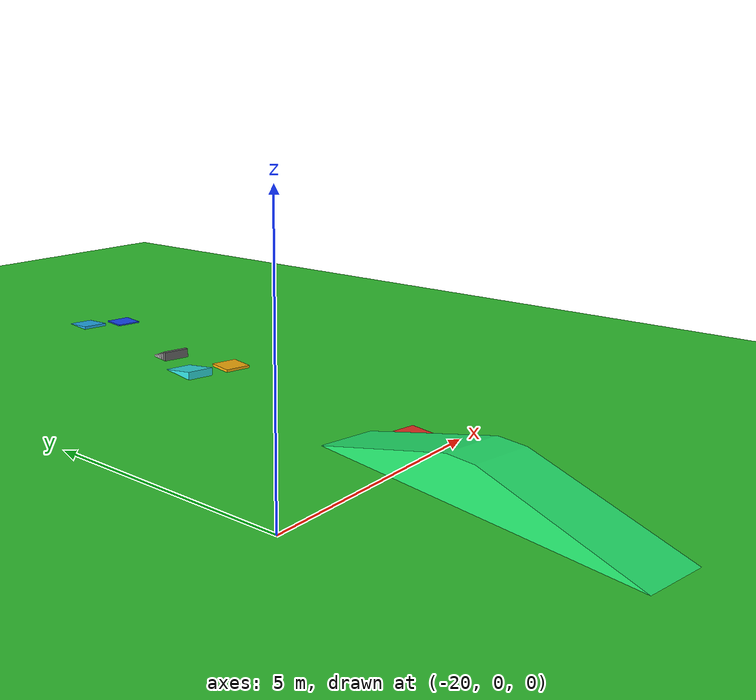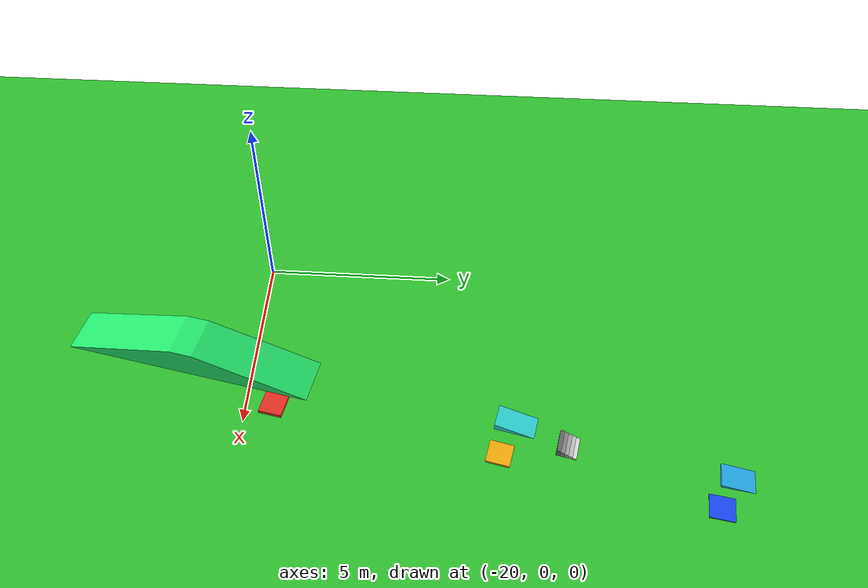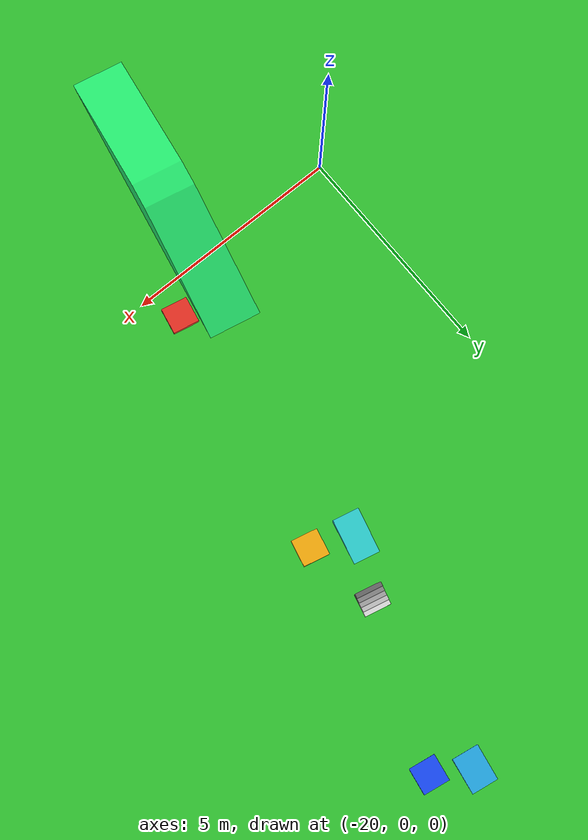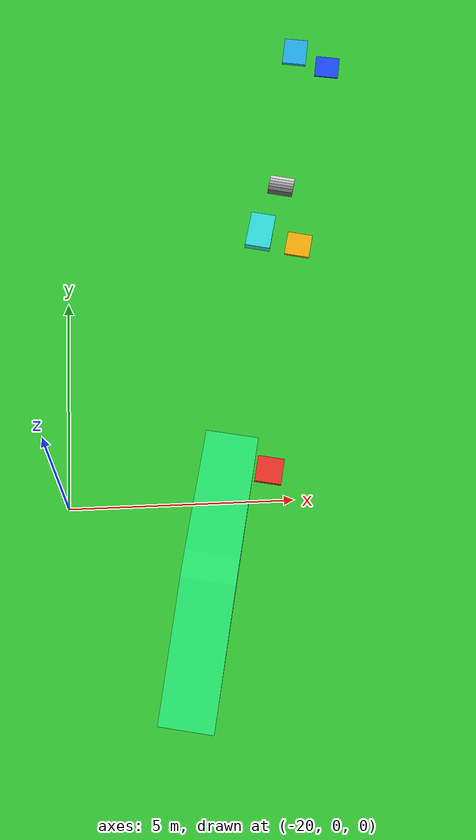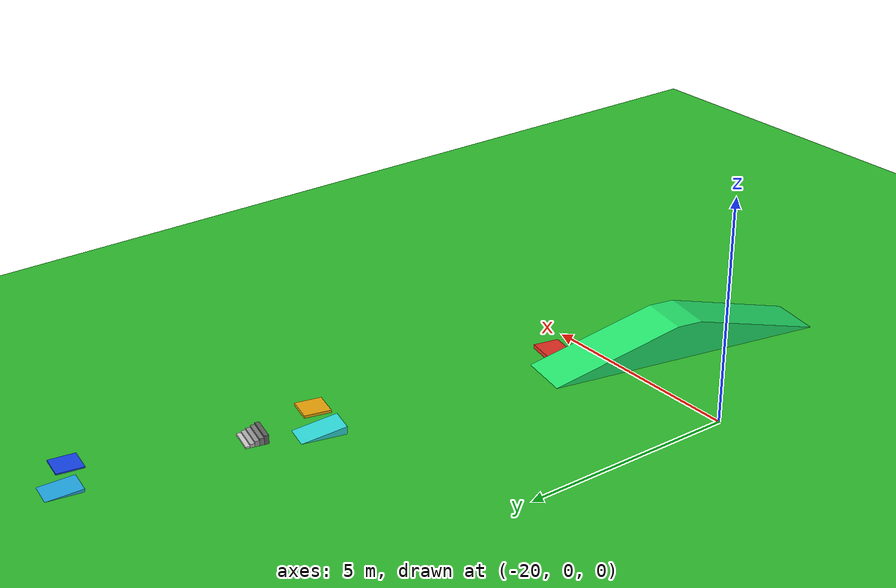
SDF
<sdf version="1.8">
 <world name="aceleradora">
  <physics name="1ms" type="ignored">
   <max_step_size>0.001</max_step_size>
   <real_time_factor>1.0</real_time_factor>
  </physics>
  <plugin filename="libgz-sim-physics-system.so" name="gz::sim::systems::Physics"/>
  <plugin filename="libgz-sim-user-commands-system.so" name="gz::sim::systems::UserCommands"/>
  <plugin filename="libgz-sim-scene-broadcaster-system.so" name="gz::sim::systems::SceneBroadcaster"/>
  <plugin filename="libgz-sim-sensors-system.so" name="gz::sim::systems::Sensors">
   <render_engine>ogre2</render_engine>
  </plugin>
  <light type="directional" name="sun">
   <pose>0 0 10 0 0 0</pose>
   <diffuse>1 1 1 1</diffuse>
   <direction>0 0 -1</direction>
  </light>
  <model name="ground_plane">
   <static>true</static>
   <link name="link">
    <collision name="collision">
     <geometry><plane><normal>0 0 1</normal><size>100 100</size></plane></geometry>
    </collision>
    <visual name="visual">
     <geometry><plane><normal>0 0 1</normal><size>100 100</size></plane></geometry>
     <material>
      <ambient>0.2 0.8 0.2 1</ambient>
      <diffuse>0.2 0.8 0.2 1</diffuse>
      <specular>0.1 0.1 0.1 1</specular>
     </material>
    </visual>
   </link>
  </model>
  <model name="aceleradora_ramp_5deg">
   <static>true</static>
   <pose>-14.0728 12.3537 0 0 0 -1.7321</pose>
   <link name="link">
    <collision name="collision">
     <geometry><mesh><uri>model://tof_test_obstacles/meshes/ramp_5deg_low.stl</uri></mesh></geometry>
     <surface><friction><ode><mu>1.0</mu><mu2>1.0</mu2></ode></friction></surface>
    </collision>
    <visual name="visual">
     <geometry><mesh><uri>model://tof_test_obstacles/meshes/ramp_5deg_low.stl</uri></mesh></geometry>
     <material><ambient>0.15 0.70 0.95 1</ambient><diffuse>0.15 0.70 0.95 1</diffuse></material>
    </visual>
   </link>
  </model>
  <model name="aceleradora_ramp_10deg">
   <static>true</static>
   <pose>-15.2309 7.2615 0 0 0 -1.7960</pose>
   <link name="link">
    <collision name="collision">
     <geometry><mesh><uri>model://tof_test_obstacles/meshes/ramp_10deg_mid.stl</uri></mesh></geometry>
     <surface><friction><ode><mu>1.0</mu><mu2>1.0</mu2></ode></friction></surface>
    </collision>
    <visual name="visual">
     <geometry><mesh><uri>model://tof_test_obstacles/meshes/ramp_10deg_mid.stl</uri></mesh></geometry>
     <material><ambient>0.20 0.90 0.90 1</ambient><diffuse>0.20 0.90 0.90 1</diffuse></material>
    </visual>
   </link>
  </model>
  <model name="aceleradora_ramp_15deg">
   <static>true</static>
   <pose>-16.2896 1.6146 0 0 0 -1.7690</pose>
   <link name="link">
    <collision name="collision">
     <geometry><mesh><uri>model://tof_test_obstacles/meshes/ramp_15deg_long_test.stl</uri></mesh></geometry>
     <surface><friction><ode><mu>1.0</mu><mu2>1.0</mu2></ode></friction></surface>
    </collision>
    <visual name="visual">
     <geometry><mesh><uri>model://tof_test_obstacles/meshes/ramp_15deg_long_test.stl</uri></mesh></geometry>
     <material><ambient>0.15 0.95 0.45 1</ambient><diffuse>0.15 0.95 0.45 1</diffuse></material>
    </visual>
   </link>
  </model>
  <model name="tof_flat_plate_3cm_60x60">
   <static>true</static>
   <pose>-13.35 11.45 0.015 0 0 -1.7321</pose>
   <link name="link">
    <collision name="collision"><geometry><box><size>0.60 0.60 0.03</size></box></geometry></collision>
    <visual name="visual">
     <geometry><box><size>0.60 0.60 0.03</size></box></geometry>
     <material><ambient>0.10 0.30 1.00 1</ambient><diffuse>0.10 0.30 1.00 1</diffuse></material>
    </visual>
   </link>
  </model>
  <model name="tof_flat_plate_6cm_60x60">
   <static>true</static>
   <pose>-14.45 6.35 0.03 0 0 -1.7960</pose>
   <link name="link">
    <collision name="collision"><geometry><box><size>0.60 0.60 0.06</size></box></geometry></collision>
    <visual name="visual">
     <geometry><box><size>0.60 0.60 0.06</size></box></geometry>
     <material><ambient>1.00 0.70 0.05 1</ambient><diffuse>1.00 0.70 0.05 1</diffuse></material>
    </visual>
   </link>
  </model>
  <model name="tof_flat_plate_9cm_60x60">
   <static>true</static>
   <pose>-15.50 0.70 0.045 0 0 -1.7690</pose>
   <link name="link">
    <collision name="collision"><geometry><box><size>0.60 0.60 0.09</size></box></geometry></collision>
    <visual name="visual">
     <geometry><box><size>0.60 0.60 0.09</size></box></geometry>
     <material><ambient>0.95 0.20 0.15 1</ambient><diffuse>0.95 0.20 0.15 1</diffuse></material>
    </visual>
   </link>
  </model>
  <model name="tof_stair_4cm_steps_50cm">
   <static>true</static>
   <pose>-14.70 8.25 0 0 0 -1.7960</pose>
   <link name="link">
    <collision name="step_1_collision">
     <pose>0.05 0 0.02 0 0 0</pose>
     <geometry><box><size>0.10 0.60 0.04</size></box></geometry>
    </collision>
    <visual name="step_1_visual">
     <pose>0.05 0 0.02 0 0 0</pose>
     <geometry><box><size>0.10 0.60 0.04</size></box></geometry>
     <material><ambient>0.90 0.90 0.90 1</ambient><diffuse>0.90 0.90 0.90 1</diffuse></material>
    </visual>
    <collision name="step_2_collision">
     <pose>0.15 0 0.04 0 0 0</pose>
     <geometry><box><size>0.10 0.60 0.08</size></box></geometry>
    </collision>
    <visual name="step_2_visual">
     <pose>0.15 0 0.04 0 0 0</pose>
     <geometry><box><size>0.10 0.60 0.08</size></box></geometry>
     <material><ambient>0.78 0.78 0.78 1</ambient><diffuse>0.78 0.78 0.78 1</diffuse></material>
    </visual>
    <collision name="step_3_collision">
     <pose>0.25 0 0.06 0 0 0</pose>
     <geometry><box><size>0.10 0.60 0.12</size></box></geometry>
    </collision>
    <visual name="step_3_visual">
     <pose>0.25 0 0.06 0 0 0</pose>
     <geometry><box><size>0.10 0.60 0.12</size></box></geometry>
     <material><ambient>0.66 0.66 0.66 1</ambient><diffuse>0.66 0.66 0.66 1</diffuse></material>
    </visual>
    <collision name="step_4_collision">
     <pose>0.35 0 0.08 0 0 0</pose>
     <geometry><box><size>0.10 0.60 0.16</size></box></geometry>
    </collision>
    <visual name="step_4_visual">
     <pose>0.35 0 0.08 0 0 0</pose>
     <geometry><box><size>0.10 0.60 0.16</size></box></geometry>
     <material><ambient>0.54 0.54 0.54 1</ambient><diffuse>0.54 0.54 0.54 1</diffuse></material>
    </visual>
    <collision name="step_5_collision">
     <pose>0.45 0 0.10 0 0 0</pose>
     <geometry><box><size>0.10 0.60 0.20</size></box></geometry>
    </collision>
    <visual name="step_5_visual">
     <pose>0.45 0 0.10 0 0 0</pose>
     <geometry><box><size>0.10 0.60 0.20</size></box></geometry>
     <material><ambient>0.42 0.42 0.42 1</ambient><diffuse>0.42 0.42 0.42 1</diffuse></material>
    </visual>
   </link>
  </model>
 </world>
</sdf>
